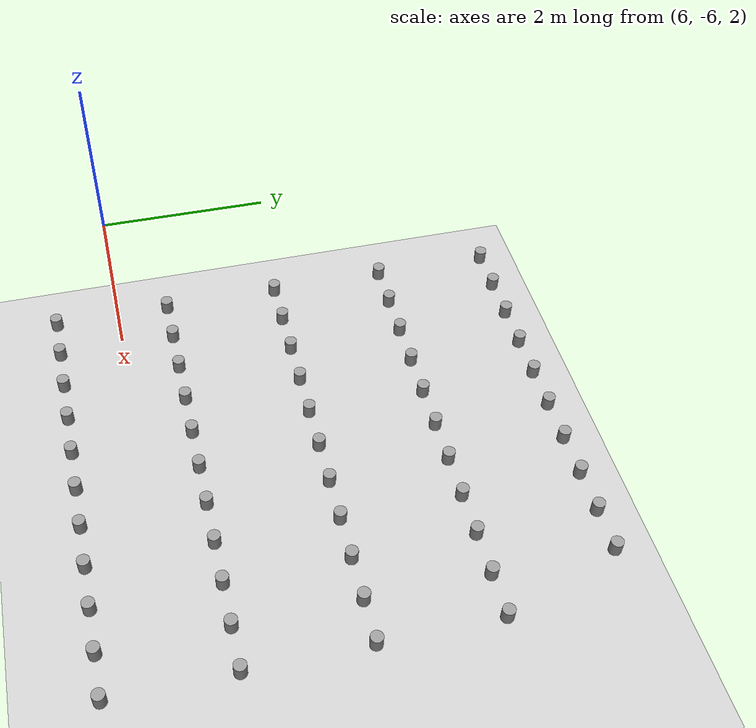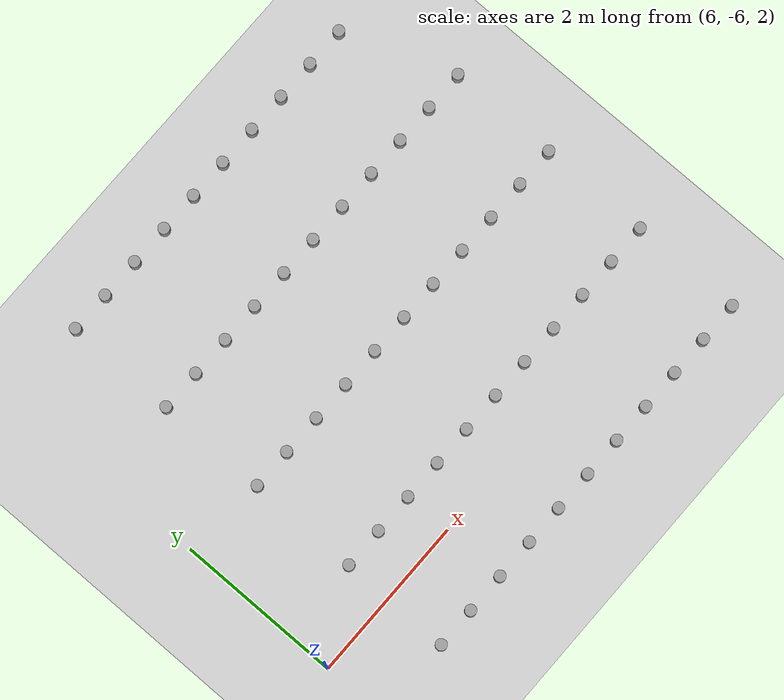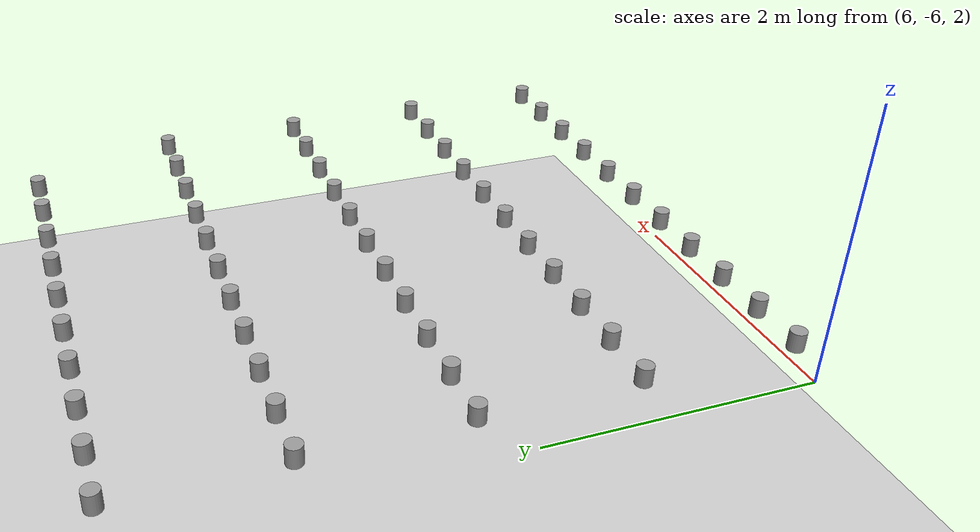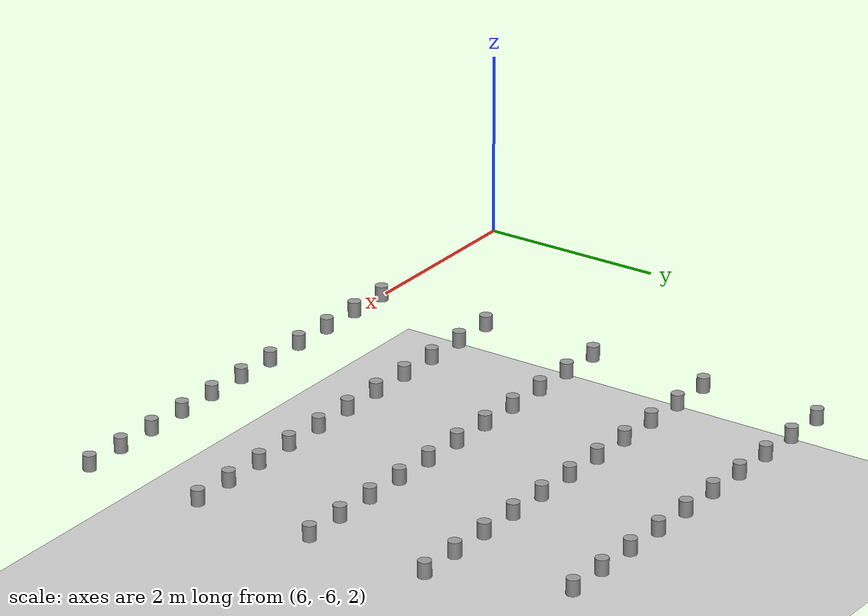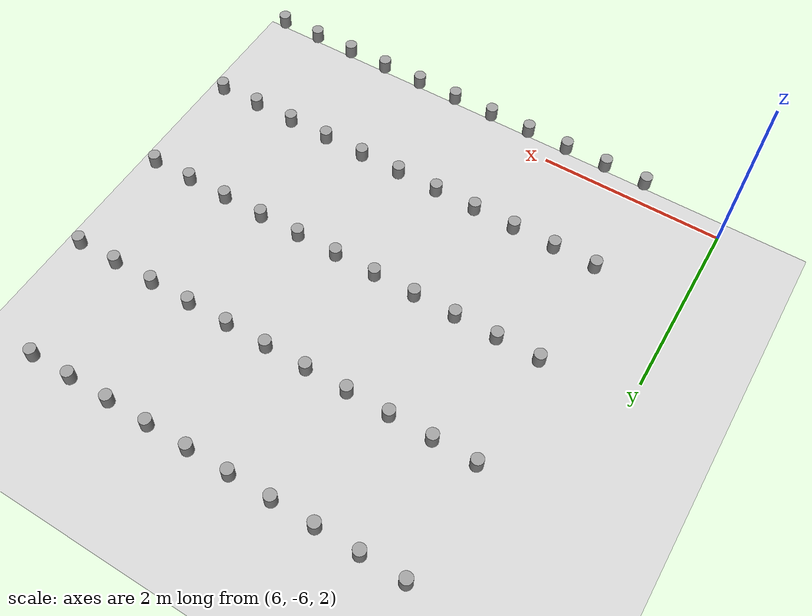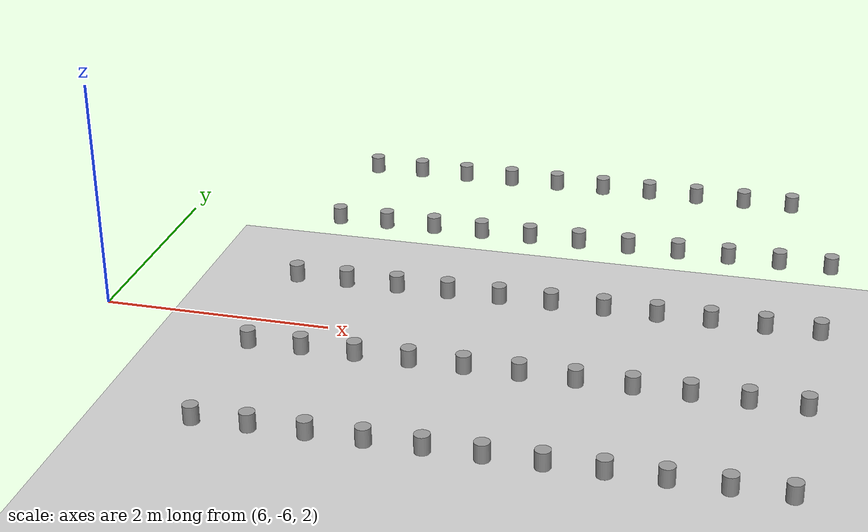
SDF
<sdf version="1.4">
 <world name="default">
  <model name="pot_0">
   <static>1</static>
   <link name="link_0">
    <collision name="collision">
     <geometry><cylinder><length>0.17</length><radius>0.07</radius></cylinder></geometry>
    </collision>
    <visual name="visual">
     <geometry><cylinder><length>0.17</length><radius>0.07</radius></cylinder></geometry>
     <material>
      <script><uri>file://media/materials/scripts/gazebo.material</uri><name>Gazebo/Grey</name></script>
      <emissive>0 0 0 1</emissive>
      <shader type="vertex"><normal_map>__default__</normal_map></shader>
      <specular>0.01 0.01 0.01 1</specular>
      <lighting>1</lighting>
      <ambient>0.1 0.1 0.1 1</ambient>
      <diffuse>0.05 0.05 0.05 1</diffuse>
     </material>
     <cast_shadows>0</cast_shadows>
    </visual>
    <pose>7.024 -6.750 1.467 0.0 0.0 0.0</pose>
   </link>
  </model>
  <model name="pot_1">
   <static>1</static>
   <link name="link_0">
    <collision name="collision">
     <geometry><cylinder><length>0.17</length><radius>0.07</radius></cylinder></geometry>
    </collision>
    <visual name="visual">
     <geometry><cylinder><length>0.17</length><radius>0.07</radius></cylinder></geometry>
     <material>
      <script><uri>file://media/materials/scripts/gazebo.material</uri><name>Gazebo/Grey</name></script>
      <emissive>0 0 0 1</emissive>
      <shader type="vertex"><normal_map>__default__</normal_map></shader>
      <specular>0.01 0.01 0.01 1</specular>
      <lighting>1</lighting>
      <ambient>0.1 0.1 0.1 1</ambient>
      <diffuse>0.05 0.05 0.05 1</diffuse>
     </material>
     <cast_shadows>0</cast_shadows>
    </visual>
    <pose>7.024 -5.400 1.467 0.0 0.0 0.0</pose>
   </link>
  </model>
  <model name="pot_2">
   <static>1</static>
   <link name="link_0">
    <collision name="collision">
     <geometry><cylinder><length>0.17</length><radius>0.07</radius></cylinder></geometry>
    </collision>
    <visual name="visual">
     <geometry><cylinder><length>0.17</length><radius>0.07</radius></cylinder></geometry>
     <material>
      <script><uri>file://media/materials/scripts/gazebo.material</uri><name>Gazebo/Grey</name></script>
      <emissive>0 0 0 1</emissive>
      <shader type="vertex"><normal_map>__default__</normal_map></shader>
      <specular>0.01 0.01 0.01 1</specular>
      <lighting>1</lighting>
      <ambient>0.1 0.1 0.1 1</ambient>
      <diffuse>0.05 0.05 0.05 1</diffuse>
     </material>
     <cast_shadows>0</cast_shadows>
    </visual>
    <pose>7.024 -4.050 1.467 0.0 0.0 0.0</pose>
   </link>
  </model>
  <model name="pot_3">
   <static>1</static>
   <link name="link_0">
    <collision name="collision">
     <geometry><cylinder><length>0.17</length><radius>0.07</radius></cylinder></geometry>
    </collision>
    <visual name="visual">
     <geometry><cylinder><length>0.17</length><radius>0.07</radius></cylinder></geometry>
     <material>
      <script><uri>file://media/materials/scripts/gazebo.material</uri><name>Gazebo/Grey</name></script>
      <emissive>0 0 0 1</emissive>
      <shader type="vertex"><normal_map>__default__</normal_map></shader>
      <specular>0.01 0.01 0.01 1</specular>
      <lighting>1</lighting>
      <ambient>0.1 0.1 0.1 1</ambient>
      <diffuse>0.05 0.05 0.05 1</diffuse>
     </material>
     <cast_shadows>0</cast_shadows>
    </visual>
    <pose>7.024 -2.700 1.467 0.0 0.0 0.0</pose>
   </link>
  </model>
  <model name="pot_4">
   <static>1</static>
   <link name="link_0">
    <collision name="collision">
     <geometry><cylinder><length>0.17</length><radius>0.07</radius></cylinder></geometry>
    </collision>
    <visual name="visual">
     <geometry><cylinder><length>0.17</length><radius>0.07</radius></cylinder></geometry>
     <material>
      <script><uri>file://media/materials/scripts/gazebo.material</uri><name>Gazebo/Grey</name></script>
      <emissive>0 0 0 1</emissive>
      <shader type="vertex"><normal_map>__default__</normal_map></shader>
      <specular>0.01 0.01 0.01 1</specular>
      <lighting>1</lighting>
      <ambient>0.1 0.1 0.1 1</ambient>
      <diffuse>0.05 0.05 0.05 1</diffuse>
     </material>
     <cast_shadows>0</cast_shadows>
    </visual>
    <pose>7.024 -1.350 1.467 0.0 0.0 0.0</pose>
   </link>
  </model>
  <model name="pot_5">
   <static>1</static>
   <link name="link_0">
    <collision name="collision">
     <geometry><cylinder><length>0.17</length><radius>0.07</radius></cylinder></geometry>
    </collision>
    <visual name="visual">
     <geometry><cylinder><length>0.17</length><radius>0.07</radius></cylinder></geometry>
     <material>
      <script><uri>file://media/materials/scripts/gazebo.material</uri><name>Gazebo/Grey</name></script>
      <emissive>0 0 0 1</emissive>
      <shader type="vertex"><normal_map>__default__</normal_map></shader>
      <specular>0.01 0.01 0.01 1</specular>
      <lighting>1</lighting>
      <ambient>0.1 0.1 0.1 1</ambient>
      <diffuse>0.05 0.05 0.05 1</diffuse>
     </material>
     <cast_shadows>0</cast_shadows>
    </visual>
    <pose>7.524 -6.750 1.467 0.0 0.0 0.0</pose>
   </link>
  </model>
  <model name="pot_6">
   <static>1</static>
   <link name="link_0">
    <collision name="collision">
     <geometry><cylinder><length>0.17</length><radius>0.07</radius></cylinder></geometry>
    </collision>
    <visual name="visual">
     <geometry><cylinder><length>0.17</length><radius>0.07</radius></cylinder></geometry>
     <material>
      <script><uri>file://media/materials/scripts/gazebo.material</uri><name>Gazebo/Grey</name></script>
      <emissive>0 0 0 1</emissive>
      <shader type="vertex"><normal_map>__default__</normal_map></shader>
      <specular>0.01 0.01 0.01 1</specular>
      <lighting>1</lighting>
      <ambient>0.1 0.1 0.1 1</ambient>
      <diffuse>0.05 0.05 0.05 1</diffuse>
     </material>
     <cast_shadows>0</cast_shadows>
    </visual>
    <pose>7.524 -5.400 1.467 0.0 0.0 0.0</pose>
   </link>
  </model>
  <model name="pot_7">
   <static>1</static>
   <link name="link_0">
    <collision name="collision">
     <geometry><cylinder><length>0.17</length><radius>0.07</radius></cylinder></geometry>
    </collision>
    <visual name="visual">
     <geometry><cylinder><length>0.17</length><radius>0.07</radius></cylinder></geometry>
     <material>
      <script><uri>file://media/materials/scripts/gazebo.material</uri><name>Gazebo/Grey</name></script>
      <emissive>0 0 0 1</emissive>
      <shader type="vertex"><normal_map>__default__</normal_map></shader>
      <specular>0.01 0.01 0.01 1</specular>
      <lighting>1</lighting>
      <ambient>0.1 0.1 0.1 1</ambient>
      <diffuse>0.05 0.05 0.05 1</diffuse>
     </material>
     <cast_shadows>0</cast_shadows>
    </visual>
    <pose>7.524 -4.050 1.467 0.0 0.0 0.0</pose>
   </link>
  </model>
  <model name="pot_8">
   <static>1</static>
   <link name="link_0">
    <collision name="collision">
     <geometry><cylinder><length>0.17</length><radius>0.07</radius></cylinder></geometry>
    </collision>
    <visual name="visual">
     <geometry><cylinder><length>0.17</length><radius>0.07</radius></cylinder></geometry>
     <material>
      <script><uri>file://media/materials/scripts/gazebo.material</uri><name>Gazebo/Grey</name></script>
      <emissive>0 0 0 1</emissive>
      <shader type="vertex"><normal_map>__default__</normal_map></shader>
      <specular>0.01 0.01 0.01 1</specular>
      <lighting>1</lighting>
      <ambient>0.1 0.1 0.1 1</ambient>
      <diffuse>0.05 0.05 0.05 1</diffuse>
     </material>
     <cast_shadows>0</cast_shadows>
    </visual>
    <pose>7.524 -2.700 1.467 0.0 0.0 0.0</pose>
   </link>
  </model>
  <model name="pot_9">
   <static>1</static>
   <link name="link_0">
    <collision name="collision">
     <geometry><cylinder><length>0.17</length><radius>0.07</radius></cylinder></geometry>
    </collision>
    <visual name="visual">
     <geometry><cylinder><length>0.17</length><radius>0.07</radius></cylinder></geometry>
     <material>
      <script><uri>file://media/materials/scripts/gazebo.material</uri><name>Gazebo/Grey</name></script>
      <emissive>0 0 0 1</emissive>
      <shader type="vertex"><normal_map>__default__</normal_map></shader>
      <specular>0.01 0.01 0.01 1</specular>
      <lighting>1</lighting>
      <ambient>0.1 0.1 0.1 1</ambient>
      <diffuse>0.05 0.05 0.05 1</diffuse>
     </material>
     <cast_shadows>0</cast_shadows>
    </visual>
    <pose>7.524 -1.350 1.467 0.0 0.0 0.0</pose>
   </link>
  </model>
  <model name="pot_10">
   <static>1</static>
   <link name="link_0">
    <collision name="collision">
     <geometry><cylinder><length>0.17</length><radius>0.07</radius></cylinder></geometry>
    </collision>
    <visual name="visual">
     <geometry><cylinder><length>0.17</length><radius>0.07</radius></cylinder></geometry>
     <material>
      <script><uri>file://media/materials/scripts/gazebo.material</uri><name>Gazebo/Grey</name></script>
      <emissive>0 0 0 1</emissive>
      <shader type="vertex"><normal_map>__default__</normal_map></shader>
      <specular>0.01 0.01 0.01 1</specular>
      <lighting>1</lighting>
      <ambient>0.1 0.1 0.1 1</ambient>
      <diffuse>0.05 0.05 0.05 1</diffuse>
     </material>
     <cast_shadows>0</cast_shadows>
    </visual>
    <pose>8.024 -6.750 1.467 0.0 0.0 0.0</pose>
   </link>
  </model>
  <model name="pot_11">
   <static>1</static>
   <link name="link_0">
    <collision name="collision">
     <geometry><cylinder><length>0.17</length><radius>0.07</radius></cylinder></geometry>
    </collision>
    <visual name="visual">
     <geometry><cylinder><length>0.17</length><radius>0.07</radius></cylinder></geometry>
     <material>
      <script><uri>file://media/materials/scripts/gazebo.material</uri><name>Gazebo/Grey</name></script>
      <emissive>0 0 0 1</emissive>
      <shader type="vertex"><normal_map>__default__</normal_map></shader>
      <specular>0.01 0.01 0.01 1</specular>
      <lighting>1</lighting>
      <ambient>0.1 0.1 0.1 1</ambient>
      <diffuse>0.05 0.05 0.05 1</diffuse>
     </material>
     <cast_shadows>0</cast_shadows>
    </visual>
    <pose>8.024 -5.400 1.467 0.0 0.0 0.0</pose>
   </link>
  </model>
  <model name="pot_12">
   <static>1</static>
   <link name="link_0">
    <collision name="collision">
     <geometry><cylinder><length>0.17</length><radius>0.07</radius></cylinder></geometry>
    </collision>
    <visual name="visual">
     <geometry><cylinder><length>0.17</length><radius>0.07</radius></cylinder></geometry>
     <material>
      <script><uri>file://media/materials/scripts/gazebo.material</uri><name>Gazebo/Grey</name></script>
      <emissive>0 0 0 1</emissive>
      <shader type="vertex"><normal_map>__default__</normal_map></shader>
      <specular>0.01 0.01 0.01 1</specular>
      <lighting>1</lighting>
      <ambient>0.1 0.1 0.1 1</ambient>
      <diffuse>0.05 0.05 0.05 1</diffuse>
     </material>
     <cast_shadows>0</cast_shadows>
    </visual>
    <pose>8.024 -4.050 1.467 0.0 0.0 0.0</pose>
   </link>
  </model>
  <model name="pot_13">
   <static>1</static>
   <link name="link_0">
    <collision name="collision">
     <geometry><cylinder><length>0.17</length><radius>0.07</radius></cylinder></geometry>
    </collision>
    <visual name="visual">
     <geometry><cylinder><length>0.17</length><radius>0.07</radius></cylinder></geometry>
     <material>
      <script><uri>file://media/materials/scripts/gazebo.material</uri><name>Gazebo/Grey</name></script>
      <emissive>0 0 0 1</emissive>
      <shader type="vertex"><normal_map>__default__</normal_map></shader>
      <specular>0.01 0.01 0.01 1</specular>
      <lighting>1</lighting>
      <ambient>0.1 0.1 0.1 1</ambient>
      <diffuse>0.05 0.05 0.05 1</diffuse>
     </material>
     <cast_shadows>0</cast_shadows>
    </visual>
    <pose>8.024 -2.700 1.467 0.0 0.0 0.0</pose>
   </link>
  </model>
  <model name="pot_14">
   <static>1</static>
   <link name="link_0">
    <collision name="collision">
     <geometry><cylinder><length>0.17</length><radius>0.07</radius></cylinder></geometry>
    </collision>
    <visual name="visual">
     <geometry><cylinder><length>0.17</length><radius>0.07</radius></cylinder></geometry>
     <material>
      <script><uri>file://media/materials/scripts/gazebo.material</uri><name>Gazebo/Grey</name></script>
      <emissive>0 0 0 1</emissive>
      <shader type="vertex"><normal_map>__default__</normal_map></shader>
      <specular>0.01 0.01 0.01 1</specular>
      <lighting>1</lighting>
      <ambient>0.1 0.1 0.1 1</ambient>
      <diffuse>0.05 0.05 0.05 1</diffuse>
     </material>
     <cast_shadows>0</cast_shadows>
    </visual>
    <pose>8.024 -1.350 1.467 0.0 0.0 0.0</pose>
   </link>
  </model>
  <model name="pot_15">
   <static>1</static>
   <link name="link_0">
    <collision name="collision">
     <geometry><cylinder><length>0.17</length><radius>0.07</radius></cylinder></geometry>
    </collision>
    <visual name="visual">
     <geometry><cylinder><length>0.17</length><radius>0.07</radius></cylinder></geometry>
     <material>
      <script><uri>file://media/materials/scripts/gazebo.material</uri><name>Gazebo/Grey</name></script>
      <emissive>0 0 0 1</emissive>
      <shader type="vertex"><normal_map>__default__</normal_map></shader>
      <specular>0.01 0.01 0.01 1</specular>
      <lighting>1</lighting>
      <ambient>0.1 0.1 0.1 1</ambient>
      <diffuse>0.05 0.05 0.05 1</diffuse>
     </material>
     <cast_shadows>0</cast_shadows>
    </visual>
    <pose>8.524 -6.750 1.467 0.0 0.0 0.0</pose>
   </link>
  </model>
  <model name="pot_16">
   <static>1</static>
   <link name="link_0">
    <collision name="collision">
     <geometry><cylinder><length>0.17</length><radius>0.07</radius></cylinder></geometry>
    </collision>
    <visual name="visual">
     <geometry><cylinder><length>0.17</length><radius>0.07</radius></cylinder></geometry>
     <material>
      <script><uri>file://media/materials/scripts/gazebo.material</uri><name>Gazebo/Grey</name></script>
      <emissive>0 0 0 1</emissive>
      <shader type="vertex"><normal_map>__default__</normal_map></shader>
      <specular>0.01 0.01 0.01 1</specular>
      <lighting>1</lighting>
      <ambient>0.1 0.1 0.1 1</ambient>
      <diffuse>0.05 0.05 0.05 1</diffuse>
     </material>
     <cast_shadows>0</cast_shadows>
    </visual>
    <pose>8.524 -5.400 1.467 0.0 0.0 0.0</pose>
   </link>
  </model>
  <model name="pot_17">
   <static>1</static>
   <link name="link_0">
    <collision name="collision">
     <geometry><cylinder><length>0.17</length><radius>0.07</radius></cylinder></geometry>
    </collision>
    <visual name="visual">
     <geometry><cylinder><length>0.17</length><radius>0.07</radius></cylinder></geometry>
     <material>
      <script><uri>file://media/materials/scripts/gazebo.material</uri><name>Gazebo/Grey</name></script>
      <emissive>0 0 0 1</emissive>
      <shader type="vertex"><normal_map>__default__</normal_map></shader>
      <specular>0.01 0.01 0.01 1</specular>
      <lighting>1</lighting>
      <ambient>0.1 0.1 0.1 1</ambient>
      <diffuse>0.05 0.05 0.05 1</diffuse>
     </material>
     <cast_shadows>0</cast_shadows>
    </visual>
    <pose>8.524 -4.050 1.467 0.0 0.0 0.0</pose>
   </link>
  </model>
  <model name="pot_18">
   <static>1</static>
   <link name="link_0">
    <collision name="collision">
     <geometry><cylinder><length>0.17</length><radius>0.07</radius></cylinder></geometry>
    </collision>
    <visual name="visual">
     <geometry><cylinder><length>0.17</length><radius>0.07</radius></cylinder></geometry>
     <material>
      <script><uri>file://media/materials/scripts/gazebo.material</uri><name>Gazebo/Grey</name></script>
      <emissive>0 0 0 1</emissive>
      <shader type="vertex"><normal_map>__default__</normal_map></shader>
      <specular>0.01 0.01 0.01 1</specular>
      <lighting>1</lighting>
      <ambient>0.1 0.1 0.1 1</ambient>
      <diffuse>0.05 0.05 0.05 1</diffuse>
     </material>
     <cast_shadows>0</cast_shadows>
    </visual>
    <pose>8.524 -2.700 1.467 0.0 0.0 0.0</pose>
   </link>
  </model>
  <model name="pot_19">
   <static>1</static>
   <link name="link_0">
    <collision name="collision">
     <geometry><cylinder><length>0.17</length><radius>0.07</radius></cylinder></geometry>
    </collision>
    <visual name="visual">
     <geometry><cylinder><length>0.17</length><radius>0.07</radius></cylinder></geometry>
     <material>
      <script><uri>file://media/materials/scripts/gazebo.material</uri><name>Gazebo/Grey</name></script>
      <emissive>0 0 0 1</emissive>
      <shader type="vertex"><normal_map>__default__</normal_map></shader>
      <specular>0.01 0.01 0.01 1</specular>
      <lighting>1</lighting>
      <ambient>0.1 0.1 0.1 1</ambient>
      <diffuse>0.05 0.05 0.05 1</diffuse>
     </material>
     <cast_shadows>0</cast_shadows>
    </visual>
    <pose>8.524 -1.350 1.467 0.0 0.0 0.0</pose>
   </link>
  </model>
  <model name="pot_20">
   <static>1</static>
   <link name="link_0">
    <collision name="collision">
     <geometry><cylinder><length>0.17</length><radius>0.07</radius></cylinder></geometry>
    </collision>
    <visual name="visual">
     <geometry><cylinder><length>0.17</length><radius>0.07</radius></cylinder></geometry>
     <material>
      <script><uri>file://media/materials/scripts/gazebo.material</uri><name>Gazebo/Grey</name></script>
      <emissive>0 0 0 1</emissive>
      <shader type="vertex"><normal_map>__default__</normal_map></shader>
      <specular>0.01 0.01 0.01 1</specular>
      <lighting>1</lighting>
      <ambient>0.1 0.1 0.1 1</ambient>
      <diffuse>0.05 0.05 0.05 1</diffuse>
     </material>
     <cast_shadows>0</cast_shadows>
    </visual>
    <pose>9.024 -6.750 1.467 0.0 0.0 0.0</pose>
   </link>
  </model>
  <model name="pot_21">
   <static>1</static>
   <link name="link_0">
    <collision name="collision">
     <geometry><cylinder><length>0.17</length><radius>0.07</radius></cylinder></geometry>
    </collision>
    <visual name="visual">
     <geometry><cylinder><length>0.17</length><radius>0.07</radius></cylinder></geometry>
     <material>
      <script><uri>file://media/materials/scripts/gazebo.material</uri><name>Gazebo/Grey</name></script>
      <emissive>0 0 0 1</emissive>
      <shader type="vertex"><normal_map>__default__</normal_map></shader>
      <specular>0.01 0.01 0.01 1</specular>
      <lighting>1</lighting>
      <ambient>0.1 0.1 0.1 1</ambient>
      <diffuse>0.05 0.05 0.05 1</diffuse>
     </material>
     <cast_shadows>0</cast_shadows>
    </visual>
    <pose>9.024 -5.400 1.467 0.0 0.0 0.0</pose>
   </link>
  </model>
  <model name="pot_22">
   <static>1</static>
   <link name="link_0">
    <collision name="collision">
     <geometry><cylinder><length>0.17</length><radius>0.07</radius></cylinder></geometry>
    </collision>
    <visual name="visual">
     <geometry><cylinder><length>0.17</length><radius>0.07</radius></cylinder></geometry>
     <material>
      <script><uri>file://media/materials/scripts/gazebo.material</uri><name>Gazebo/Grey</name></script>
      <emissive>0 0 0 1</emissive>
      <shader type="vertex"><normal_map>__default__</normal_map></shader>
      <specular>0.01 0.01 0.01 1</specular>
      <lighting>1</lighting>
      <ambient>0.1 0.1 0.1 1</ambient>
      <diffuse>0.05 0.05 0.05 1</diffuse>
     </material>
     <cast_shadows>0</cast_shadows>
    </visual>
    <pose>9.024 -4.050 1.467 0.0 0.0 0.0</pose>
   </link>
  </model>
  <model name="pot_23">
   <static>1</static>
   <link name="link_0">
    <collision name="collision">
     <geometry><cylinder><length>0.17</length><radius>0.07</radius></cylinder></geometry>
    </collision>
    <visual name="visual">
     <geometry><cylinder><length>0.17</length><radius>0.07</radius></cylinder></geometry>
     <material>
      <script><uri>file://media/materials/scripts/gazebo.material</uri><name>Gazebo/Grey</name></script>
      <emissive>0 0 0 1</emissive>
      <shader type="vertex"><normal_map>__default__</normal_map></shader>
      <specular>0.01 0.01 0.01 1</specular>
      <lighting>1</lighting>
      <ambient>0.1 0.1 0.1 1</ambient>
      <diffuse>0.05 0.05 0.05 1</diffuse>
     </material>
     <cast_shadows>0</cast_shadows>
    </visual>
    <pose>9.024 -2.700 1.467 0.0 0.0 0.0</pose>
   </link>
  </model>
  <model name="pot_24">
   <static>1</static>
   <link name="link_0">
    <collision name="collision">
     <geometry><cylinder><length>0.17</length><radius>0.07</radius></cylinder></geometry>
    </collision>
    <visual name="visual">
     <geometry><cylinder><length>0.17</length><radius>0.07</radius></cylinder></geometry>
     <material>
      <script><uri>file://media/materials/scripts/gazebo.material</uri><name>Gazebo/Grey</name></script>
      <emissive>0 0 0 1</emissive>
      <shader type="vertex"><normal_map>__default__</normal_map></shader>
      <specular>0.01 0.01 0.01 1</specular>
      <lighting>1</lighting>
      <ambient>0.1 0.1 0.1 1</ambient>
      <diffuse>0.05 0.05 0.05 1</diffuse>
     </material>
     <cast_shadows>0</cast_shadows>
    </visual>
    <pose>9.024 -1.350 1.467 0.0 0.0 0.0</pose>
   </link>
  </model>
  <model name="pot_25">
   <static>1</static>
   <link name="link_0">
    <collision name="collision">
     <geometry><cylinder><length>0.17</length><radius>0.07</radius></cylinder></geometry>
    </collision>
    <visual name="visual">
     <geometry><cylinder><length>0.17</length><radius>0.07</radius></cylinder></geometry>
     <material>
      <script><uri>file://media/materials/scripts/gazebo.material</uri><name>Gazebo/Grey</name></script>
      <emissive>0 0 0 1</emissive>
      <shader type="vertex"><normal_map>__default__</normal_map></shader>
      <specular>0.01 0.01 0.01 1</specular>
      <lighting>1</lighting>
      <ambient>0.1 0.1 0.1 1</ambient>
      <diffuse>0.05 0.05 0.05 1</diffuse>
     </material>
     <cast_shadows>0</cast_shadows>
    </visual>
    <pose>9.524 -6.750 1.467 0.0 0.0 0.0</pose>
   </link>
  </model>
  <model name="pot_26">
   <static>1</static>
   <link name="link_0">
    <collision name="collision">
     <geometry><cylinder><length>0.17</length><radius>0.07</radius></cylinder></geometry>
    </collision>
    <visual name="visual">
     <geometry><cylinder><length>0.17</length><radius>0.07</radius></cylinder></geometry>
     <material>
      <script><uri>file://media/materials/scripts/gazebo.material</uri><name>Gazebo/Grey</name></script>
      <emissive>0 0 0 1</emissive>
      <shader type="vertex"><normal_map>__default__</normal_map></shader>
      <specular>0.01 0.01 0.01 1</specular>
      <lighting>1</lighting>
      <ambient>0.1 0.1 0.1 1</ambient>
      <diffuse>0.05 0.05 0.05 1</diffuse>
     </material>
     <cast_shadows>0</cast_shadows>
    </visual>
    <pose>9.524 -5.400 1.467 0.0 0.0 0.0</pose>
   </link>
  </model>
  <model name="pot_27">
   <static>1</static>
   <link name="link_0">
    <collision name="collision">
     <geometry><cylinder><length>0.17</length><radius>0.07</radius></cylinder></geometry>
    </collision>
    <visual name="visual">
     <geometry><cylinder><length>0.17</length><radius>0.07</radius></cylinder></geometry>
     <material>
      <script><uri>file://media/materials/scripts/gazebo.material</uri><name>Gazebo/Grey</name></script>
      <emissive>0 0 0 1</emissive>
      <shader type="vertex"><normal_map>__default__</normal_map></shader>
      <specular>0.01 0.01 0.01 1</specular>
      <lighting>1</lighting>
      <ambient>0.1 0.1 0.1 1</ambient>
      <diffuse>0.05 0.05 0.05 1</diffuse>
     </material>
     <cast_shadows>0</cast_shadows>
    </visual>
    <pose>9.524 -4.050 1.467 0.0 0.0 0.0</pose>
   </link>
  </model>
  <model name="pot_28">
   <static>1</static>
   <link name="link_0">
    <collision name="collision">
     <geometry><cylinder><length>0.17</length><radius>0.07</radius></cylinder></geometry>
    </collision>
    <visual name="visual">
     <geometry><cylinder><length>0.17</length><radius>0.07</radius></cylinder></geometry>
     <material>
      <script><uri>file://media/materials/scripts/gazebo.material</uri><name>Gazebo/Grey</name></script>
      <emissive>0 0 0 1</emissive>
      <shader type="vertex"><normal_map>__default__</normal_map></shader>
      <specular>0.01 0.01 0.01 1</specular>
      <lighting>1</lighting>
      <ambient>0.1 0.1 0.1 1</ambient>
      <diffuse>0.05 0.05 0.05 1</diffuse>
     </material>
     <cast_shadows>0</cast_shadows>
    </visual>
    <pose>9.524 -2.700 1.467 0.0 0.0 0.0</pose>
   </link>
  </model>
  <model name="pot_29">
   <static>1</static>
   <link name="link_0">
    <collision name="collision">
     <geometry><cylinder><length>0.17</length><radius>0.07</radius></cylinder></geometry>
    </collision>
    <visual name="visual">
     <geometry><cylinder><length>0.17</length><radius>0.07</radius></cylinder></geometry>
     <material>
      <script><uri>file://media/materials/scripts/gazebo.material</uri><name>Gazebo/Grey</name></script>
      <emissive>0 0 0 1</emissive>
      <shader type="vertex"><normal_map>__default__</normal_map></shader>
      <specular>0.01 0.01 0.01 1</specular>
      <lighting>1</lighting>
      <ambient>0.1 0.1 0.1 1</ambient>
      <diffuse>0.05 0.05 0.05 1</diffuse>
     </material>
     <cast_shadows>0</cast_shadows>
    </visual>
    <pose>9.524 -1.350 1.467 0.0 0.0 0.0</pose>
   </link>
  </model>
  <model name="pot_30">
   <static>1</static>
   <link name="link_0">
    <collision name="collision">
     <geometry><cylinder><length>0.17</length><radius>0.07</radius></cylinder></geometry>
    </collision>
    <visual name="visual">
     <geometry><cylinder><length>0.17</length><radius>0.07</radius></cylinder></geometry>
     <material>
      <script><uri>file://media/materials/scripts/gazebo.material</uri><name>Gazebo/Grey</name></script>
      <emissive>0 0 0 1</emissive>
      <shader type="vertex"><normal_map>__default__</normal_map></shader>
      <specular>0.01 0.01 0.01 1</specular>
      <lighting>1</lighting>
      <ambient>0.1 0.1 0.1 1</ambient>
      <diffuse>0.05 0.05 0.05 1</diffuse>
     </material>
     <cast_shadows>0</cast_shadows>
    </visual>
    <pose>10.024 -6.750 1.467 0.0 0.0 0.0</pose>
   </link>
  </model>
  <model name="pot_31">
   <static>1</static>
   <link name="link_0">
    <collision name="collision">
     <geometry><cylinder><length>0.17</length><radius>0.07</radius></cylinder></geometry>
    </collision>
    <visual name="visual">
     <geometry><cylinder><length>0.17</length><radius>0.07</radius></cylinder></geometry>
     <material>
      <script><uri>file://media/materials/scripts/gazebo.material</uri><name>Gazebo/Grey</name></script>
      <emissive>0 0 0 1</emissive>
      <shader type="vertex"><normal_map>__default__</normal_map></shader>
      <specular>0.01 0.01 0.01 1</specular>
      <lighting>1</lighting>
      <ambient>0.1 0.1 0.1 1</ambient>
      <diffuse>0.05 0.05 0.05 1</diffuse>
     </material>
     <cast_shadows>0</cast_shadows>
    </visual>
    <pose>10.024 -5.400 1.467 0.0 0.0 0.0</pose>
   </link>
  </model>
  <model name="pot_32">
   <static>1</static>
   <link name="link_0">
    <collision name="collision">
     <geometry><cylinder><length>0.17</length><radius>0.07</radius></cylinder></geometry>
    </collision>
    <visual name="visual">
     <geometry><cylinder><length>0.17</length><radius>0.07</radius></cylinder></geometry>
     <material>
      <script><uri>file://media/materials/scripts/gazebo.material</uri><name>Gazebo/Grey</name></script>
      <emissive>0 0 0 1</emissive>
      <shader type="vertex"><normal_map>__default__</normal_map></shader>
      <specular>0.01 0.01 0.01 1</specular>
      <lighting>1</lighting>
      <ambient>0.1 0.1 0.1 1</ambient>
      <diffuse>0.05 0.05 0.05 1</diffuse>
     </material>
     <cast_shadows>0</cast_shadows>
    </visual>
    <pose>10.024 -4.050 1.467 0.0 0.0 0.0</pose>
   </link>
  </model>
  <model name="pot_33">
   <static>1</static>
   <link name="link_0">
    <collision name="collision">
     <geometry><cylinder><length>0.17</length><radius>0.07</radius></cylinder></geometry>
    </collision>
    <visual name="visual">
     <geometry><cylinder><length>0.17</length><radius>0.07</radius></cylinder></geometry>
     <material>
      <script><uri>file://media/materials/scripts/gazebo.material</uri><name>Gazebo/Grey</name></script>
      <emissive>0 0 0 1</emissive>
      <shader type="vertex"><normal_map>__default__</normal_map></shader>
      <specular>0.01 0.01 0.01 1</specular>
      <lighting>1</lighting>
      <ambient>0.1 0.1 0.1 1</ambient>
      <diffuse>0.05 0.05 0.05 1</diffuse>
     </material>
     <cast_shadows>0</cast_shadows>
    </visual>
    <pose>10.024 -2.700 1.467 0.0 0.0 0.0</pose>
   </link>
  </model>
  <model name="pot_34">
   <static>1</static>
   <link name="link_0">
    <collision name="collision">
     <geometry><cylinder><length>0.17</length><radius>0.07</radius></cylinder></geometry>
    </collision>
    <visual name="visual">
     <geometry><cylinder><length>0.17</length><radius>0.07</radius></cylinder></geometry>
     <material>
      <script><uri>file://media/materials/scripts/gazebo.material</uri><name>Gazebo/Grey</name></script>
      <emissive>0 0 0 1</emissive>
      <shader type="vertex"><normal_map>__default__</normal_map></shader>
      <specular>0.01 0.01 0.01 1</specular>
      <lighting>1</lighting>
      <ambient>0.1 0.1 0.1 1</ambient>
      <diffuse>0.05 0.05 0.05 1</diffuse>
     </material>
     <cast_shadows>0</cast_shadows>
    </visual>
    <pose>10.024 -1.350 1.467 0.0 0.0 0.0</pose>
   </link>
  </model>
  <model name="pot_35">
   <static>1</static>
   <link name="link_0">
    <collision name="collision">
     <geometry><cylinder><length>0.17</length><radius>0.07</radius></cylinder></geometry>
    </collision>
    <visual name="visual">
     <geometry><cylinder><length>0.17</length><radius>0.07</radius></cylinder></geometry>
     <material>
      <script><uri>file://media/materials/scripts/gazebo.material</uri><name>Gazebo/Grey</name></script>
      <emissive>0 0 0 1</emissive>
      <shader type="vertex"><normal_map>__default__</normal_map></shader>
      <specular>0.01 0.01 0.01 1</specular>
      <lighting>1</lighting>
      <ambient>0.1 0.1 0.1 1</ambient>
      <diffuse>0.05 0.05 0.05 1</diffuse>
     </material>
     <cast_shadows>0</cast_shadows>
    </visual>
    <pose>10.524 -6.750 1.467 0.0 0.0 0.0</pose>
   </link>
  </model>
  <model name="pot_36">
   <static>1</static>
   <link name="link_0">
    <collision name="collision">
     <geometry><cylinder><length>0.17</length><radius>0.07</radius></cylinder></geometry>
    </collision>
    <visual name="visual">
     <geometry><cylinder><length>0.17</length><radius>0.07</radius></cylinder></geometry>
     <material>
      <script><uri>file://media/materials/scripts/gazebo.material</uri><name>Gazebo/Grey</name></script>
      <emissive>0 0 0 1</emissive>
      <shader type="vertex"><normal_map>__default__</normal_map></shader>
      <specular>0.01 0.01 0.01 1</specular>
      <lighting>1</lighting>
      <ambient>0.1 0.1 0.1 1</ambient>
      <diffuse>0.05 0.05 0.05 1</diffuse>
     </material>
     <cast_shadows>0</cast_shadows>
    </visual>
    <pose>10.524 -5.400 1.467 0.0 0.0 0.0</pose>
   </link>
  </model>
  <model name="pot_37">
   <static>1</static>
   <link name="link_0">
    <collision name="collision">
     <geometry><cylinder><length>0.17</length><radius>0.07</radius></cylinder></geometry>
    </collision>
    <visual name="visual">
     <geometry><cylinder><length>0.17</length><radius>0.07</radius></cylinder></geometry>
     <material>
      <script><uri>file://media/materials/scripts/gazebo.material</uri><name>Gazebo/Grey</name></script>
      <emissive>0 0 0 1</emissive>
      <shader type="vertex"><normal_map>__default__</normal_map></shader>
      <specular>0.01 0.01 0.01 1</specular>
      <lighting>1</lighting>
      <ambient>0.1 0.1 0.1 1</ambient>
      <diffuse>0.05 0.05 0.05 1</diffuse>
     </material>
     <cast_shadows>0</cast_shadows>
    </visual>
    <pose>10.524 -4.050 1.467 0.0 0.0 0.0</pose>
   </link>
  </model>
  <model name="pot_38">
   <static>1</static>
   <link name="link_0">
    <collision name="collision">
     <geometry><cylinder><length>0.17</length><radius>0.07</radius></cylinder></geometry>
    </collision>
    <visual name="visual">
     <geometry><cylinder><length>0.17</length><radius>0.07</radius></cylinder></geometry>
     <material>
      <script><uri>file://media/materials/scripts/gazebo.material</uri><name>Gazebo/Grey</name></script>
      <emissive>0 0 0 1</emissive>
      <shader type="vertex"><normal_map>__default__</normal_map></shader>
      <specular>0.01 0.01 0.01 1</specular>
      <lighting>1</lighting>
      <ambient>0.1 0.1 0.1 1</ambient>
      <diffuse>0.05 0.05 0.05 1</diffuse>
     </material>
     <cast_shadows>0</cast_shadows>
    </visual>
    <pose>10.524 -2.700 1.467 0.0 0.0 0.0</pose>
   </link>
  </model>
  <model name="pot_39">
   <static>1</static>
   <link name="link_0">
    <collision name="collision">
     <geometry><cylinder><length>0.17</length><radius>0.07</radius></cylinder></geometry>
    </collision>
    <visual name="visual">
     <geometry><cylinder><length>0.17</length><radius>0.07</radius></cylinder></geometry>
     <material>
      <script><uri>file://media/materials/scripts/gazebo.material</uri><name>Gazebo/Grey</name></script>
      <emissive>0 0 0 1</emissive>
      <shader type="vertex"><normal_map>__default__</normal_map></shader>
      <specular>0.01 0.01 0.01 1</specular>
      <lighting>1</lighting>
      <ambient>0.1 0.1 0.1 1</ambient>
      <diffuse>0.05 0.05 0.05 1</diffuse>
     </material>
     <cast_shadows>0</cast_shadows>
    </visual>
    <pose>10.524 -1.350 1.467 0.0 0.0 0.0</pose>
   </link>
  </model>
  <model name="pot_40">
   <static>1</static>
   <link name="link_0">
    <collision name="collision">
     <geometry><cylinder><length>0.17</length><radius>0.07</radius></cylinder></geometry>
    </collision>
    <visual name="visual">
     <geometry><cylinder><length>0.17</length><radius>0.07</radius></cylinder></geometry>
     <material>
      <script><uri>file://media/materials/scripts/gazebo.material</uri><name>Gazebo/Grey</name></script>
      <emissive>0 0 0 1</emissive>
      <shader type="vertex"><normal_map>__default__</normal_map></shader>
      <specular>0.01 0.01 0.01 1</specular>
      <lighting>1</lighting>
      <ambient>0.1 0.1 0.1 1</ambient>
      <diffuse>0.05 0.05 0.05 1</diffuse>
     </material>
     <cast_shadows>0</cast_shadows>
    </visual>
    <pose>11.024 -6.750 1.467 0.0 0.0 0.0</pose>
   </link>
  </model>
  <model name="pot_41">
   <static>1</static>
   <link name="link_0">
    <collision name="collision">
     <geometry><cylinder><length>0.17</length><radius>0.07</radius></cylinder></geometry>
    </collision>
    <visual name="visual">
     <geometry><cylinder><length>0.17</length><radius>0.07</radius></cylinder></geometry>
     <material>
      <script><uri>file://media/materials/scripts/gazebo.material</uri><name>Gazebo/Grey</name></script>
      <emissive>0 0 0 1</emissive>
      <shader type="vertex"><normal_map>__default__</normal_map></shader>
      <specular>0.01 0.01 0.01 1</specular>
      <lighting>1</lighting>
      <ambient>0.1 0.1 0.1 1</ambient>
      <diffuse>0.05 0.05 0.05 1</diffuse>
     </material>
     <cast_shadows>0</cast_shadows>
    </visual>
    <pose>11.024 -5.400 1.467 0.0 0.0 0.0</pose>
   </link>
  </model>
  <model name="pot_42">
   <static>1</static>
   <link name="link_0">
    <collision name="collision">
     <geometry><cylinder><length>0.17</length><radius>0.07</radius></cylinder></geometry>
    </collision>
    <visual name="visual">
     <geometry><cylinder><length>0.17</length><radius>0.07</radius></cylinder></geometry>
     <material>
      <script><uri>file://media/materials/scripts/gazebo.material</uri><name>Gazebo/Grey</name></script>
      <emissive>0 0 0 1</emissive>
      <shader type="vertex"><normal_map>__default__</normal_map></shader>
      <specular>0.01 0.01 0.01 1</specular>
      <lighting>1</lighting>
      <ambient>0.1 0.1 0.1 1</ambient>
      <diffuse>0.05 0.05 0.05 1</diffuse>
     </material>
     <cast_shadows>0</cast_shadows>
    </visual>
    <pose>11.024 -4.050 1.467 0.0 0.0 0.0</pose>
   </link>
  </model>
  <model name="pot_43">
   <static>1</static>
   <link name="link_0">
    <collision name="collision">
     <geometry><cylinder><length>0.17</length><radius>0.07</radius></cylinder></geometry>
    </collision>
    <visual name="visual">
     <geometry><cylinder><length>0.17</length><radius>0.07</radius></cylinder></geometry>
     <material>
      <script><uri>file://media/materials/scripts/gazebo.material</uri><name>Gazebo/Grey</name></script>
      <emissive>0 0 0 1</emissive>
      <shader type="vertex"><normal_map>__default__</normal_map></shader>
      <specular>0.01 0.01 0.01 1</specular>
      <lighting>1</lighting>
      <ambient>0.1 0.1 0.1 1</ambient>
      <diffuse>0.05 0.05 0.05 1</diffuse>
     </material>
     <cast_shadows>0</cast_shadows>
    </visual>
    <pose>11.024 -2.700 1.467 0.0 0.0 0.0</pose>
   </link>
  </model>
  <model name="pot_44">
   <static>1</static>
   <link name="link_0">
    <collision name="collision">
     <geometry><cylinder><length>0.17</length><radius>0.07</radius></cylinder></geometry>
    </collision>
    <visual name="visual">
     <geometry><cylinder><length>0.17</length><radius>0.07</radius></cylinder></geometry>
     <material>
      <script><uri>file://media/materials/scripts/gazebo.material</uri><name>Gazebo/Grey</name></script>
      <emissive>0 0 0 1</emissive>
      <shader type="vertex"><normal_map>__default__</normal_map></shader>
      <specular>0.01 0.01 0.01 1</specular>
      <lighting>1</lighting>
      <ambient>0.1 0.1 0.1 1</ambient>
      <diffuse>0.05 0.05 0.05 1</diffuse>
     </material>
     <cast_shadows>0</cast_shadows>
    </visual>
    <pose>11.024 -1.350 1.467 0.0 0.0 0.0</pose>
   </link>
  </model>
  <model name="pot_45">
   <static>1</static>
   <link name="link_0">
    <collision name="collision">
     <geometry><cylinder><length>0.17</length><radius>0.07</radius></cylinder></geometry>
    </collision>
    <visual name="visual">
     <geometry><cylinder><length>0.17</length><radius>0.07</radius></cylinder></geometry>
     <material>
      <script><uri>file://media/materials/scripts/gazebo.material</uri><name>Gazebo/Grey</name></script>
      <emissive>0 0 0 1</emissive>
      <shader type="vertex"><normal_map>__default__</normal_map></shader>
      <specular>0.01 0.01 0.01 1</specular>
      <lighting>1</lighting>
      <ambient>0.1 0.1 0.1 1</ambient>
      <diffuse>0.05 0.05 0.05 1</diffuse>
     </material>
     <cast_shadows>0</cast_shadows>
    </visual>
    <pose>11.524 -6.750 1.467 0.0 0.0 0.0</pose>
   </link>
  </model>
  <model name="pot_46">
   <static>1</static>
   <link name="link_0">
    <collision name="collision">
     <geometry><cylinder><length>0.17</length><radius>0.07</radius></cylinder></geometry>
    </collision>
    <visual name="visual">
     <geometry><cylinder><length>0.17</length><radius>0.07</radius></cylinder></geometry>
     <material>
      <script><uri>file://media/materials/scripts/gazebo.material</uri><name>Gazebo/Grey</name></script>
      <emissive>0 0 0 1</emissive>
      <shader type="vertex"><normal_map>__default__</normal_map></shader>
      <specular>0.01 0.01 0.01 1</specular>
      <lighting>1</lighting>
      <ambient>0.1 0.1 0.1 1</ambient>
      <diffuse>0.05 0.05 0.05 1</diffuse>
     </material>
     <cast_shadows>0</cast_shadows>
    </visual>
    <pose>11.524 -5.400 1.467 0.0 0.0 0.0</pose>
   </link>
  </model>
  <model name="pot_47">
   <static>1</static>
   <link name="link_0">
    <collision name="collision">
     <geometry><cylinder><length>0.17</length><radius>0.07</radius></cylinder></geometry>
    </collision>
    <visual name="visual">
     <geometry><cylinder><length>0.17</length><radius>0.07</radius></cylinder></geometry>
     <material>
      <script><uri>file://media/materials/scripts/gazebo.material</uri><name>Gazebo/Grey</name></script>
      <emissive>0 0 0 1</emissive>
      <shader type="vertex"><normal_map>__default__</normal_map></shader>
      <specular>0.01 0.01 0.01 1</specular>
      <lighting>1</lighting>
      <ambient>0.1 0.1 0.1 1</ambient>
      <diffuse>0.05 0.05 0.05 1</diffuse>
     </material>
     <cast_shadows>0</cast_shadows>
    </visual>
    <pose>11.524 -4.050 1.467 0.0 0.0 0.0</pose>
   </link>
  </model>
  <model name="pot_48">
   <static>1</static>
   <link name="link_0">
    <collision name="collision">
     <geometry><cylinder><length>0.17</length><radius>0.07</radius></cylinder></geometry>
    </collision>
    <visual name="visual">
     <geometry><cylinder><length>0.17</length><radius>0.07</radius></cylinder></geometry>
     <material>
      <script><uri>file://media/materials/scripts/gazebo.material</uri><name>Gazebo/Grey</name></script>
      <emissive>0 0 0 1</emissive>
      <shader type="vertex"><normal_map>__default__</normal_map></shader>
      <specular>0.01 0.01 0.01 1</specular>
      <lighting>1</lighting>
      <ambient>0.1 0.1 0.1 1</ambient>
      <diffuse>0.05 0.05 0.05 1</diffuse>
     </material>
     <cast_shadows>0</cast_shadows>
    </visual>
    <pose>11.524 -2.700 1.467 0.0 0.0 0.0</pose>
   </link>
  </model>
  <model name="pot_49">
   <static>1</static>
   <link name="link_0">
    <collision name="collision">
     <geometry><cylinder><length>0.17</length><radius>0.07</radius></cylinder></geometry>
    </collision>
    <visual name="visual">
     <geometry><cylinder><length>0.17</length><radius>0.07</radius></cylinder></geometry>
     <material>
      <script><uri>file://media/materials/scripts/gazebo.material</uri><name>Gazebo/Grey</name></script>
      <emissive>0 0 0 1</emissive>
      <shader type="vertex"><normal_map>__default__</normal_map></shader>
      <specular>0.01 0.01 0.01 1</specular>
      <lighting>1</lighting>
      <ambient>0.1 0.1 0.1 1</ambient>
      <diffuse>0.05 0.05 0.05 1</diffuse>
     </material>
     <cast_shadows>0</cast_shadows>
    </visual>
    <pose>11.524 -1.350 1.467 0.0 0.0 0.0</pose>
   </link>
  </model>
  <model name="pot_50">
   <static>1</static>
   <link name="link_0">
    <collision name="collision">
     <geometry><cylinder><length>0.17</length><radius>0.07</radius></cylinder></geometry>
    </collision>
    <visual name="visual">
     <geometry><cylinder><length>0.17</length><radius>0.07</radius></cylinder></geometry>
     <material>
      <script><uri>file://media/materials/scripts/gazebo.material</uri><name>Gazebo/Grey</name></script>
      <emissive>0 0 0 1</emissive>
      <shader type="vertex"><normal_map>__default__</normal_map></shader>
      <specular>0.01 0.01 0.01 1</specular>
      <lighting>1</lighting>
      <ambient>0.1 0.1 0.1 1</ambient>
      <diffuse>0.05 0.05 0.05 1</diffuse>
     </material>
     <cast_shadows>0</cast_shadows>
    </visual>
    <pose>12.024 -6.750 1.467 0.0 0.0 0.0</pose>
   </link>
  </model>
  <model name="pot_51">
   <static>1</static>
   <link name="link_0">
    <collision name="collision">
     <geometry><cylinder><length>0.17</length><radius>0.07</radius></cylinder></geometry>
    </collision>
    <visual name="visual">
     <geometry><cylinder><length>0.17</length><radius>0.07</radius></cylinder></geometry>
     <material>
      <script><uri>file://media/materials/scripts/gazebo.material</uri><name>Gazebo/Grey</name></script>
      <emissive>0 0 0 1</emissive>
      <shader type="vertex"><normal_map>__default__</normal_map></shader>
      <specular>0.01 0.01 0.01 1</specular>
      <lighting>1</lighting>
      <ambient>0.1 0.1 0.1 1</ambient>
      <diffuse>0.05 0.05 0.05 1</diffuse>
     </material>
     <cast_shadows>0</cast_shadows>
    </visual>
    <pose>12.024 -5.400 1.467 0.0 0.0 0.0</pose>
   </link>
  </model>
  <model name="pot_52">
   <static>1</static>
   <link name="link_0">
    <collision name="collision">
     <geometry><cylinder><length>0.17</length><radius>0.07</radius></cylinder></geometry>
    </collision>
    <visual name="visual">
     <geometry><cylinder><length>0.17</length><radius>0.07</radius></cylinder></geometry>
     <material>
      <script><uri>file://media/materials/scripts/gazebo.material</uri><name>Gazebo/Grey</name></script>
      <emissive>0 0 0 1</emissive>
      <shader type="vertex"><normal_map>__default__</normal_map></shader>
      <specular>0.01 0.01 0.01 1</specular>
      <lighting>1</lighting>
      <ambient>0.1 0.1 0.1 1</ambient>
      <diffuse>0.05 0.05 0.05 1</diffuse>
     </material>
     <cast_shadows>0</cast_shadows>
    </visual>
    <pose>12.024 -4.050 1.467 0.0 0.0 0.0</pose>
   </link>
  </model>
  <model name="pot_53">
   <static>1</static>
   <link name="link_0">
    <collision name="collision">
     <geometry><cylinder><length>0.17</length><radius>0.07</radius></cylinder></geometry>
    </collision>
    <visual name="visual">
     <geometry><cylinder><length>0.17</length><radius>0.07</radius></cylinder></geometry>
     <material>
      <script><uri>file://media/materials/scripts/gazebo.material</uri><name>Gazebo/Grey</name></script>
      <emissive>0 0 0 1</emissive>
      <shader type="vertex"><normal_map>__default__</normal_map></shader>
      <specular>0.01 0.01 0.01 1</specular>
      <lighting>1</lighting>
      <ambient>0.1 0.1 0.1 1</ambient>
      <diffuse>0.05 0.05 0.05 1</diffuse>
     </material>
     <cast_shadows>0</cast_shadows>
    </visual>
    <pose>12.024 -2.700 1.467 0.0 0.0 0.0</pose>
   </link>
  </model>
  <include><uri>model://sun</uri></include>
  <include><uri>model://ground_plane</uri></include>
 </world>
</sdf>
